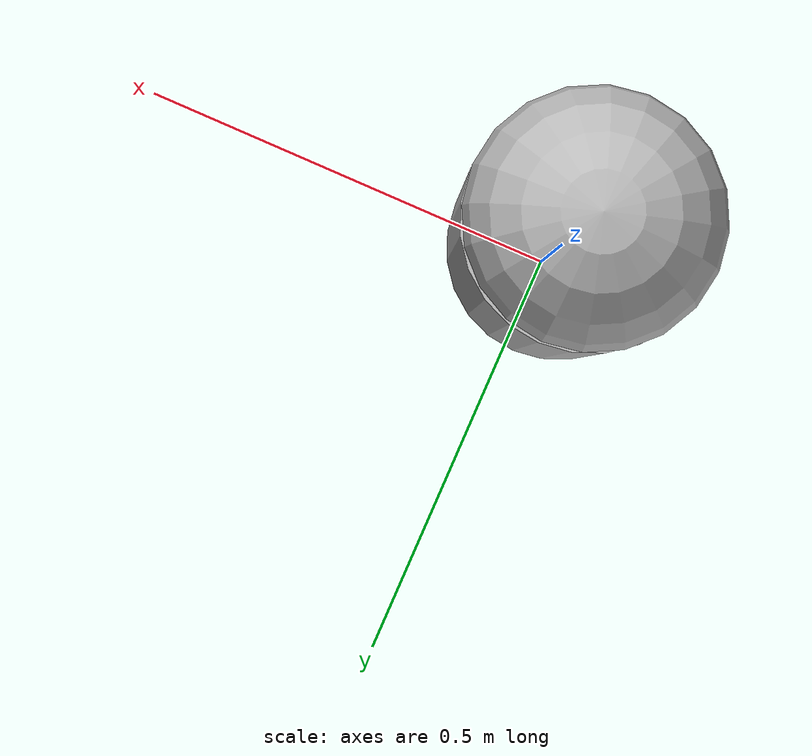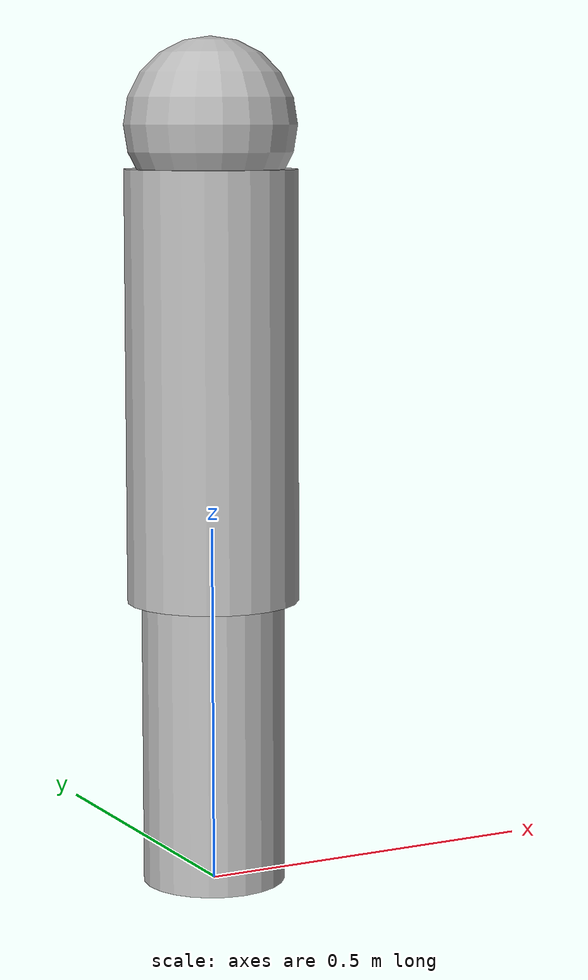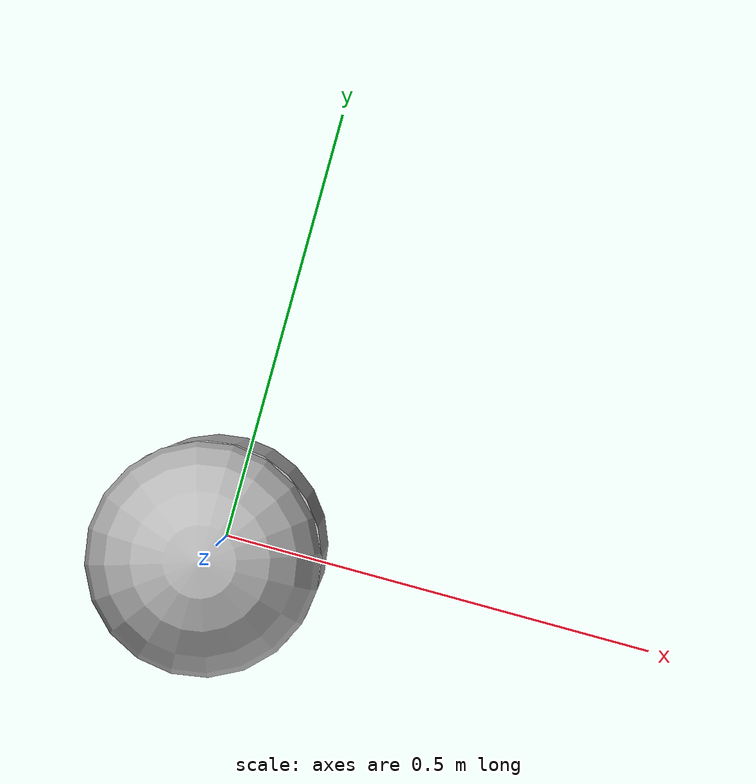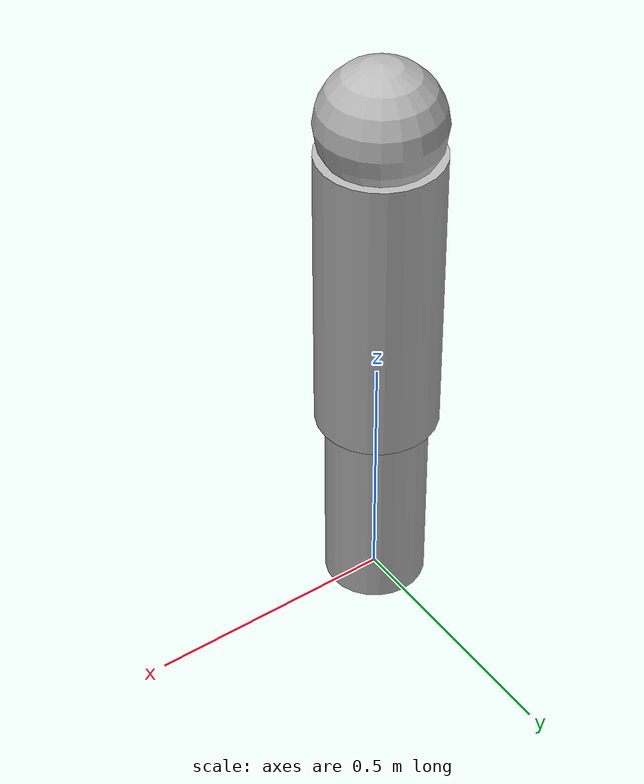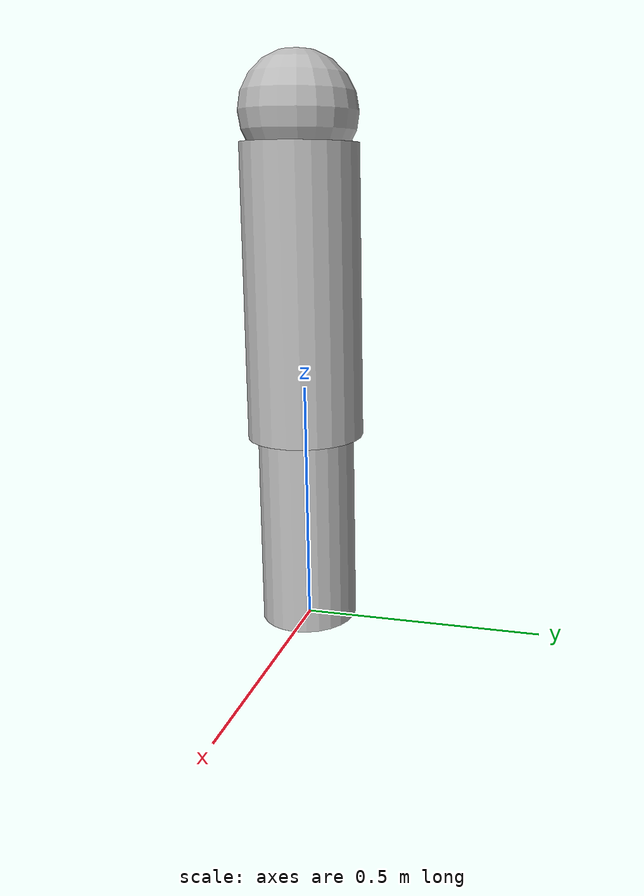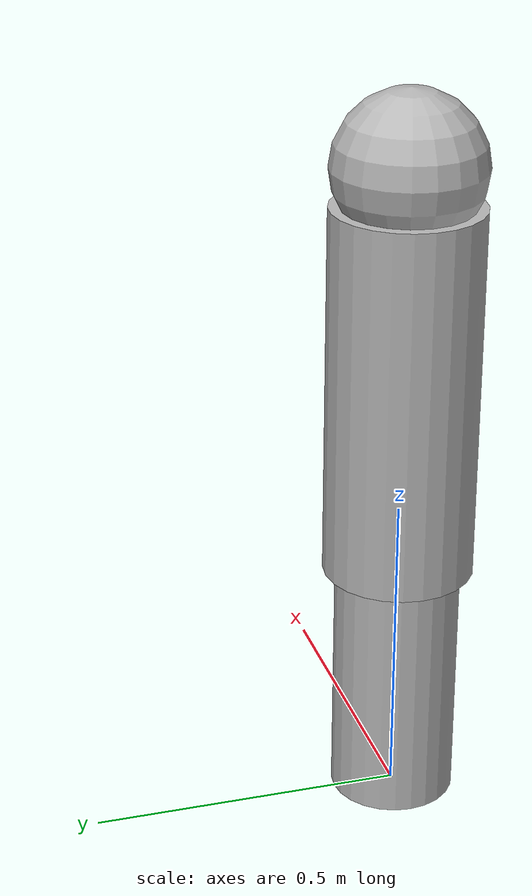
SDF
<?xml version='1.0'?>
<sdf version='1.6'>
  <model name='leg1'>
    <link name='r_calf'>
      <pose frame=''>0 0 0.2 0 0 0</pose>
      <inertial>
        <mass>10</mass>
      </inertial>
      <gravity>1</gravity>
      <self_collide>1</self_collide>
      <visual name='r_calf_geom_visual'>
        <pose frame=''>0 0 0 0 0 0</pose>
        <geometry>
          <cylinder>
            <radius>0.1</radius>
            <length>0.4 </length>
          </cylinder>
        </geometry>
      </visual>
      <collision name='r_calf_geom'>
        <pose frame=''>0 0 0 0 0 0</pose>
        <geometry>
          <cylinder>
            <radius>0.1</radius>
            <length>0.4</length>
          </cylinder>
        </geometry>
      </collision>
    </link>

    <link name='r_thigh_lift'>
      <pose frame=''>0 0 0.7 0 0 0</pose>
      <inertial>
        <mass>8</mass>
      </inertial>
      <gravity>1</gravity>
      <self_collide>1</self_collide>

      <visual name='r_thigh_lift_geom_visual'>
        <pose frame=''>0 0 0 0 -0 0</pose>
        <geometry>
          <cylinder>
            <radius>0.12</radius>
            <length>0.6</length>
          </cylinder>
        </geometry>
      </visual>
      <collision name='r_thigh_lift_geom'>
        <pose frame=''>0 0 0 0 0 0</pose>
        <geometry>
          <cylinder>
            <radius>0.12</radius>
            <length>0.7</length>
          </cylinder>
        </geometry>
      </collision>
    </link>

    <link name='hip'>
      <pose frame=''>0 0 1.06 0 0 0</pose>
      <inertial>
        <mass>1</mass>
      </inertial>
      <gravity>1</gravity>
      <self_collide>1</self_collide>
      <visual name='hip_geom_visual'>
        <pose frame=''>0 0 0 0 0 0</pose>
        <geometry>
          <sphere>
            <radius>0.12</radius>
          </sphere>
        </geometry>
      </visual>
      <collision name='hip_geom'>
        <pose frame=''>0 0 0 0 0 0</pose>
        <geometry>
          <sphere>
            <radius>0.06</radius>
          </sphere>
        </geometry>
      </collision>
    </link>

    <joint name='r_calf_joint' type='revolute'>
      <parent>r_thigh_lift</parent>
      <child>r_calf</child>
      <pose frame=''>0 0 0.2 0 0 0</pose>
      <axis>
        <xyz>0 1 0</xyz>
        <use_parent_model_frame>1</use_parent_model_frame>
        <limit>
          <lower>-1.5708</lower>
          <upper>1.5708</upper>
        </limit>
        <dynamics>
          <friction>0.8</friction>
        </dynamics>
      </axis>
    </joint>

    <joint name='r_thigh_lift_joint' type='revolute'>
      <parent>hip</parent>
      <child>r_thigh_lift</child>
      <pose frame=''>0 0 0.3 0 0 0</pose>
      <axis>
        <xyz>0 1 0</xyz>
        <use_parent_model_frame>1</use_parent_model_frame>
        <limit>
          <lower>-1.5708</lower>
          <upper>1.5708</upper>
        </limit>
        <dynamics>
          <friction>.5</friction>
        </dynamics>
      </axis>
    </joint>

    <static>0</static>
    <allow_auto_disable>1</allow_auto_disable>

  </model>
</sdf>
